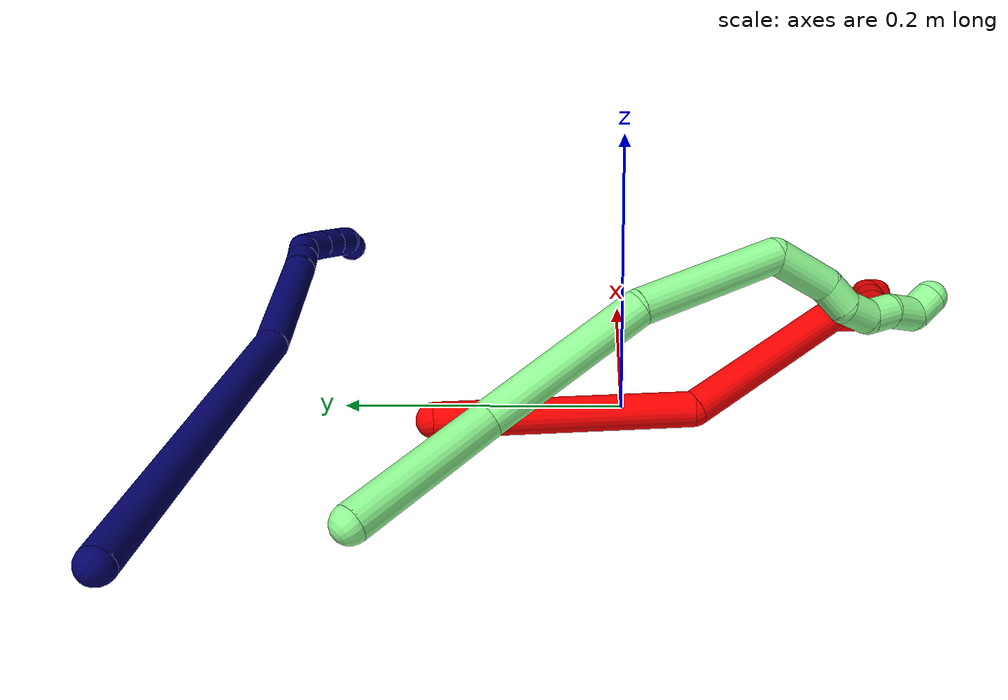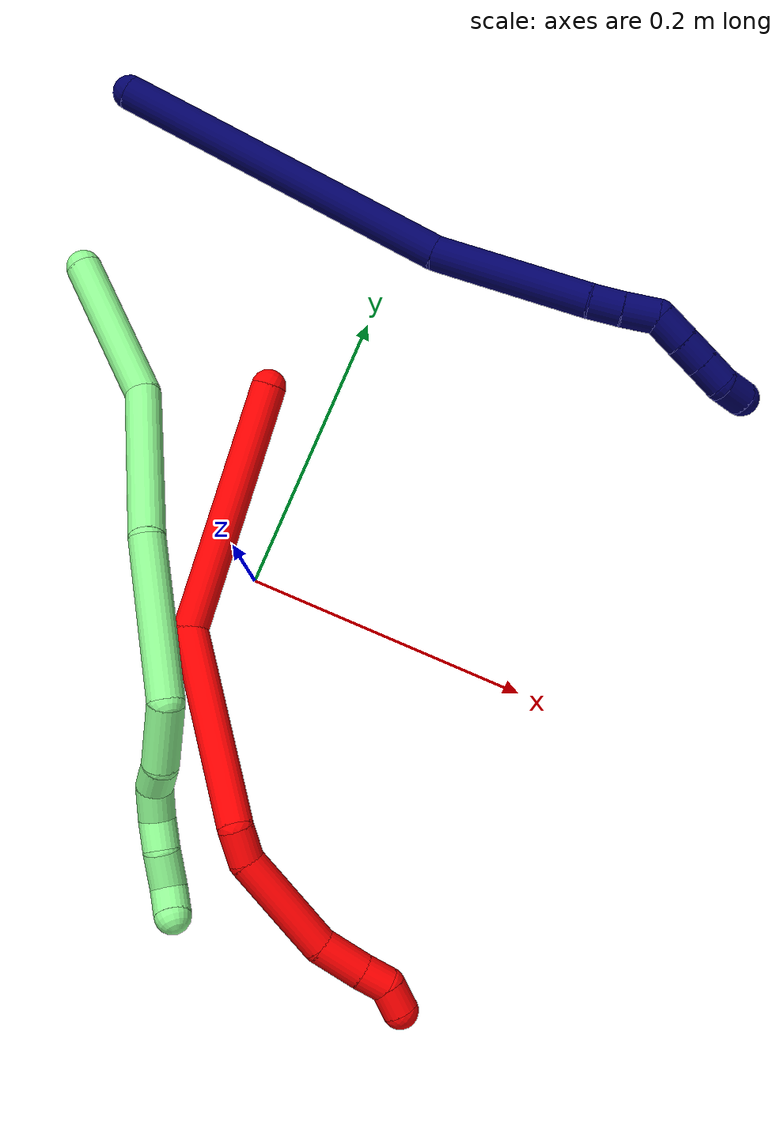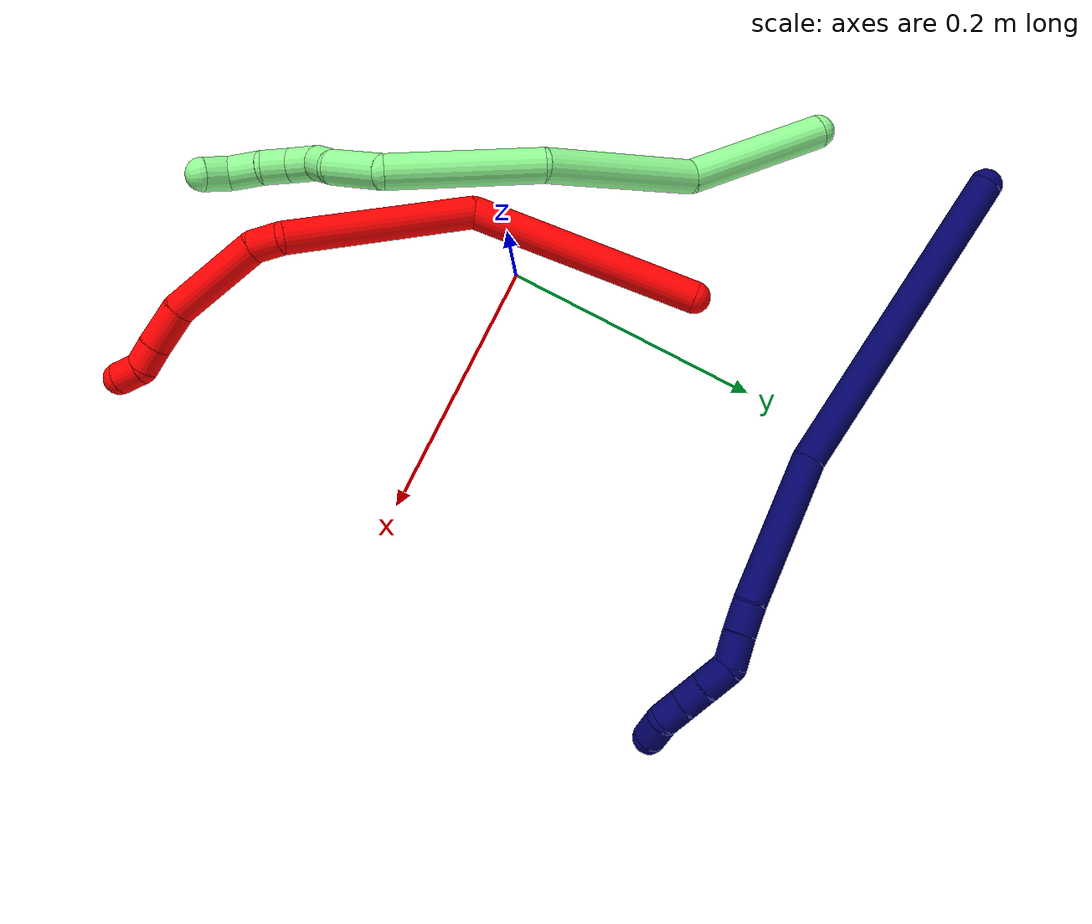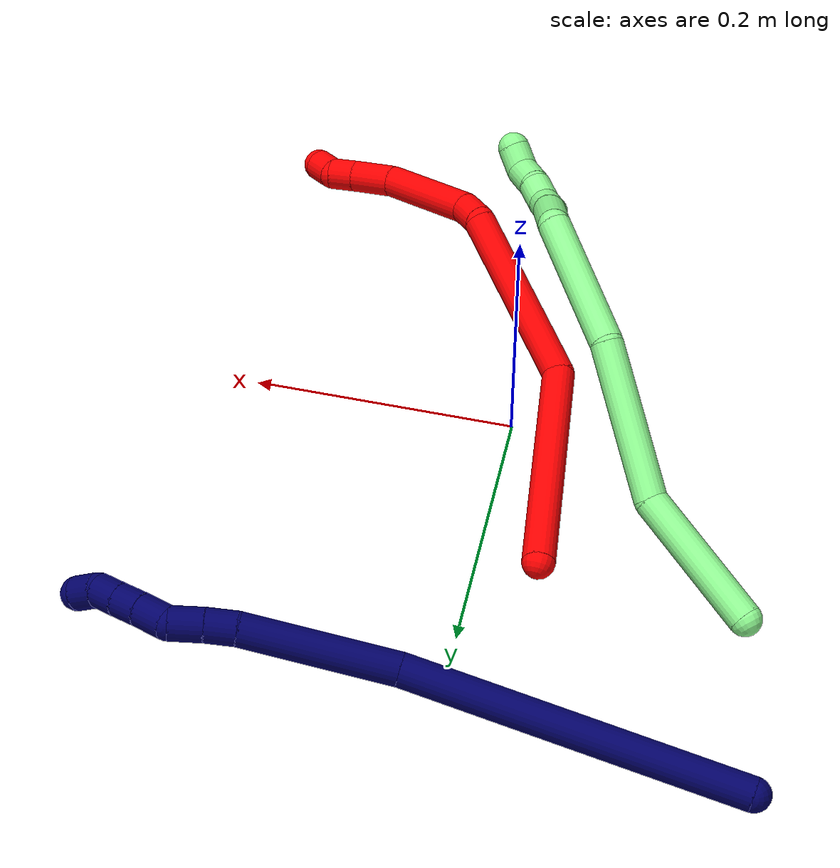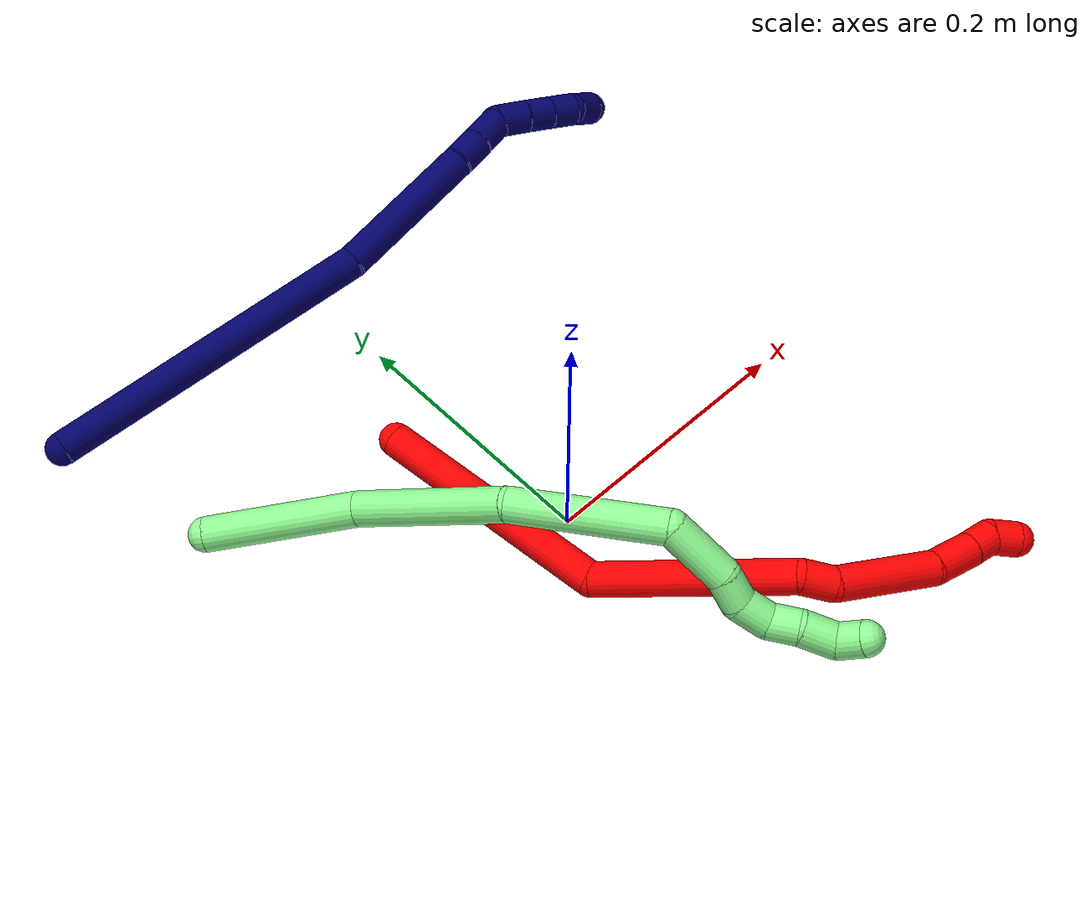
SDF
<sdf version="1.7">
 <world name="default">
  <model name="2">
   <static>0</static>
   <link name="2">
    <collision name="collision-cylinder-e_1_1_4">
     <pose>-0.002847 -0.031276 0.084442 0.35472 -0.031606 -0.005666</pose>
     <geometry><cylinder><radius>0.0125</radius><length>0.180187</length></cylinder></geometry>
     <surface>
      <friction><ode><mu>1.16</mu><mu2>1.16</mu2><slip1>0</slip1><slip2>0</slip2></ode></friction>
      <contact><ode><kp>1e+06</kp><kd>1</kd><max_vel>0</max_vel><min_depth>0.001</min_depth></ode></contact>
     </surface>
    </collision>
    <visual name="visual-cylinder-e_1_1_4">
     <pose>-0.002847 -0.031276 0.084442 0.35472 -0.031606 -0.005666</pose>
     <geometry><cylinder><radius>0.0125</radius><length>0.180187</length></cylinder></geometry>
     <material><ambient>1 0 0 1</ambient></material>
    </visual>
    <collision name="collision-cylinder-e_2_4_5">
     <pose>0.033742 -0.086785 0.22478 0.409065 0.574491 0.122405</pose>
     <geometry><cylinder><radius>0.0125</radius><length>0.145144</length></cylinder></geometry>
     <surface>
      <friction><ode><mu>1.16</mu><mu2>1.16</mu2><slip1>0</slip1><slip2>0</slip2></ode></friction>
      <contact><ode><kp>1e+06</kp><kd>1</kd><max_vel>0</max_vel><min_depth>0.001</min_depth></ode></contact>
     </surface>
    </collision>
    <visual name="visual-cylinder-e_2_4_5">
     <pose>0.033742 -0.086785 0.22478 0.409065 0.574491 0.122405</pose>
     <geometry><cylinder><radius>0.0125</radius><length>0.145144</length></cylinder></geometry>
     <material><ambient>1 0 0 1</ambient></material>
    </visual>
    <collision name="collision-cylinder-e_3_5_6">
     <pose>0.076863 -0.120195 0.287661 0.920283 0.30924 0.154194</pose>
     <geometry><cylinder><radius>0.0125</radius><length>0.024216</length></cylinder></geometry>
     <surface>
      <friction><ode><mu>1.16</mu><mu2>1.16</mu2><slip1>0</slip1><slip2>0</slip2></ode></friction>
      <contact><ode><kp>1e+06</kp><kd>1</kd><max_vel>0</max_vel><min_depth>0.001</min_depth></ode></contact>
     </surface>
    </collision>
    <visual name="visual-cylinder-e_3_5_6">
     <pose>0.076863 -0.120195 0.287661 0.920283 0.30924 0.154194</pose>
     <geometry><cylinder><radius>0.0125</radius><length>0.024216</length></cylinder></geometry>
     <material><ambient>1 0 0 1</ambient></material>
    </visual>
    <collision name="collision-cylinder-e_4_6_7">
     <pose>0.102477 -0.1587 0.305648 1.21189 0.610781 0.43012</pose>
     <geometry><cylinder><radius>0.0125</radius><length>0.076473</length></cylinder></geometry>
     <surface>
      <friction><ode><mu>1.16</mu><mu2>1.16</mu2><slip1>0</slip1><slip2>0</slip2></ode></friction>
      <contact><ode><kp>1e+06</kp><kd>1</kd><max_vel>0</max_vel><min_depth>0.001</min_depth></ode></contact>
     </surface>
    </collision>
    <visual name="visual-cylinder-e_4_6_7">
     <pose>0.102477 -0.1587 0.305648 1.21189 0.610781 0.43012</pose>
     <geometry><cylinder><radius>0.0125</radius><length>0.076473</length></cylinder></geometry>
     <material><ambient>1 0 0 1</ambient></material>
    </visual>
    <collision name="collision-cylinder-e_5_7_8">
     <pose>0.13611 -0.200004 0.317248 1.52089 0.773272 0.739023</pose>
     <geometry><cylinder><radius>0.0125</radius><length>0.033512</length></cylinder></geometry>
     <surface>
      <friction><ode><mu>1.16</mu><mu2>1.16</mu2><slip1>0</slip1><slip2>0</slip2></ode></friction>
      <contact><ode><kp>1e+06</kp><kd>1</kd><max_vel>0</max_vel><min_depth>0.001</min_depth></ode></contact>
     </surface>
    </collision>
    <visual name="visual-cylinder-e_5_7_8">
     <pose>0.13611 -0.200004 0.317248 1.52089 0.773272 0.739023</pose>
     <geometry><cylinder><radius>0.0125</radius><length>0.033512</length></cylinder></geometry>
     <material><ambient>1 0 0 1</ambient></material>
    </visual>
    <collision name="collision-cylinder-e_6_8_9">
     <pose>0.155246 -0.218919 0.317722 1.5887 0.819647 0.832816</pose>
     <geometry><cylinder><radius>0.0125</radius><length>0.020338</length></cylinder></geometry>
     <surface>
      <friction><ode><mu>1.16</mu><mu2>1.16</mu2><slip1>0</slip1><slip2>0</slip2></ode></friction>
      <contact><ode><kp>1e+06</kp><kd>1</kd><max_vel>0</max_vel><min_depth>0.001</min_depth></ode></contact>
     </surface>
    </collision>
    <visual name="visual-cylinder-e_6_8_9">
     <pose>0.155246 -0.218919 0.317722 1.5887 0.819647 0.832816</pose>
     <geometry><cylinder><radius>0.0125</radius><length>0.020338</length></cylinder></geometry>
     <material><ambient>1 0 0 1</ambient></material>
    </visual>
    <collision name="collision-cylinder-e_7_9_2">
     <pose>0.166841 -0.233716 0.322312 1.03048 0.426378 0.243947</pose>
     <geometry><cylinder><radius>0.0125</radius><length>0.02013</length></cylinder></geometry>
     <surface>
      <friction><ode><mu>1.16</mu><mu2>1.16</mu2><slip1>0</slip1><slip2>0</slip2></ode></friction>
      <contact><ode><kp>1e+06</kp><kd>1</kd><max_vel>0</max_vel><min_depth>0.001</min_depth></ode></contact>
     </surface>
    </collision>
    <visual name="visual-cylinder-e_7_9_2">
     <pose>0.166841 -0.233716 0.322312 1.03048 0.426378 0.243947</pose>
     <geometry><cylinder><radius>0.0125</radius><length>0.02013</length></cylinder></geometry>
     <material><ambient>1 0 0 1</ambient></material>
    </visual>
    <collision name="collision-sphere-2">
     <pose>0.171004 -0.241575 0.327026 0 -0 0</pose>
     <geometry><sphere><radius>0.0125</radius></sphere></geometry>
     <surface>
      <friction><ode><mu>1.16</mu><mu2>1.16</mu2><slip1>0</slip1><slip2>0</slip2></ode></friction>
      <contact><ode><kp>1e+06</kp><kd>1</kd><max_vel>0</max_vel><min_depth>0.001</min_depth></ode></contact>
     </surface>
    </collision>
    <visual name="visual-sphere-2">
     <pose>0.171004 -0.241575 0.327026 0 -0 0</pose>
     <geometry><sphere><radius>0.0125</radius></sphere></geometry>
     <material><ambient>1 0 0 1</ambient></material>
    </visual>
    <collision name="collision-sphere-9">
     <pose>0.162679 -0.225858 0.317598 0 -0 0</pose>
     <geometry><sphere><radius>0.0125</radius></sphere></geometry>
     <surface>
      <friction><ode><mu>1.16</mu><mu2>1.16</mu2><slip1>0</slip1><slip2>0</slip2></ode></friction>
      <contact><ode><kp>1e+06</kp><kd>1</kd><max_vel>0</max_vel><min_depth>0.001</min_depth></ode></contact>
     </surface>
    </collision>
    <visual name="visual-sphere-9">
     <pose>0.162679 -0.225858 0.317598 0 -0 0</pose>
     <geometry><sphere><radius>0.0125</radius></sphere></geometry>
     <material><ambient>1 0 0 1</ambient></material>
    </visual>
    <collision name="collision-sphere-4">
     <pose>-0.005694 -0.062553 0.168885 0 -0 0</pose>
     <geometry><sphere><radius>0.0125</radius></sphere></geometry>
     <surface>
      <friction><ode><mu>1.16</mu><mu2>1.16</mu2><slip1>0</slip1><slip2>0</slip2></ode></friction>
      <contact><ode><kp>1e+06</kp><kd>1</kd><max_vel>0</max_vel><min_depth>0.001</min_depth></ode></contact>
     </surface>
    </collision>
    <visual name="visual-sphere-4">
     <pose>-0.005694 -0.062553 0.168885 0 -0 0</pose>
     <geometry><sphere><radius>0.0125</radius></sphere></geometry>
     <material><ambient>1 0 0 1</ambient></material>
    </visual>
    <collision name="collision-sphere-1">
     <geometry><sphere><radius>0.0125</radius></sphere></geometry>
     <surface>
      <friction><ode><mu>1.16</mu><mu2>1.16</mu2><slip1>0</slip1><slip2>0</slip2></ode></friction>
      <contact><ode><kp>1e+06</kp><kd>1</kd><max_vel>0</max_vel><min_depth>0.001</min_depth></ode></contact>
     </surface>
    </collision>
    <visual name="visual-sphere-1">
     <geometry><sphere><radius>0.0125</radius></sphere></geometry>
     <material><ambient>1 0 0 1</ambient></material>
    </visual>
    <collision name="collision-sphere-8">
     <pose>0.147813 -0.21198 0.317846 0 -0 0</pose>
     <geometry><sphere><radius>0.0125</radius></sphere></geometry>
     <surface>
      <friction><ode><mu>1.16</mu><mu2>1.16</mu2><slip1>0</slip1><slip2>0</slip2></ode></friction>
      <contact><ode><kp>1e+06</kp><kd>1</kd><max_vel>0</max_vel><min_depth>0.001</min_depth></ode></contact>
     </surface>
    </collision>
    <visual name="visual-sphere-8">
     <pose>0.147813 -0.21198 0.317846 0 -0 0</pose>
     <geometry><sphere><radius>0.0125</radius></sphere></geometry>
     <material><ambient>1 0 0 1</ambient></material>
    </visual>
    <collision name="collision-sphere-5">
     <pose>0.073179 -0.111016 0.280676 0 -0 0</pose>
     <geometry><sphere><radius>0.0125</radius></sphere></geometry>
     <surface>
      <friction><ode><mu>1.16</mu><mu2>1.16</mu2><slip1>0</slip1><slip2>0</slip2></ode></friction>
      <contact><ode><kp>1e+06</kp><kd>1</kd><max_vel>0</max_vel><min_depth>0.001</min_depth></ode></contact>
     </surface>
    </collision>
    <visual name="visual-sphere-5">
     <pose>0.073179 -0.111016 0.280676 0 -0 0</pose>
     <geometry><sphere><radius>0.0125</radius></sphere></geometry>
     <material><ambient>1 0 0 1</ambient></material>
    </visual>
    <collision name="collision-sphere-6">
     <pose>0.080548 -0.129373 0.294645 0 -0 0</pose>
     <geometry><sphere><radius>0.0125</radius></sphere></geometry>
     <surface>
      <friction><ode><mu>1.16</mu><mu2>1.16</mu2><slip1>0</slip1><slip2>0</slip2></ode></friction>
      <contact><ode><kp>1e+06</kp><kd>1</kd><max_vel>0</max_vel><min_depth>0.001</min_depth></ode></contact>
     </surface>
    </collision>
    <visual name="visual-sphere-6">
     <pose>0.080548 -0.129373 0.294645 0 -0 0</pose>
     <geometry><sphere><radius>0.0125</radius></sphere></geometry>
     <material><ambient>1 0 0 1</ambient></material>
    </visual>
    <collision name="collision-sphere-7">
     <pose>0.124406 -0.188027 0.31665 0 -0 0</pose>
     <geometry><sphere><radius>0.0125</radius></sphere></geometry>
     <surface>
      <friction><ode><mu>1.16</mu><mu2>1.16</mu2><slip1>0</slip1><slip2>0</slip2></ode></friction>
      <contact><ode><kp>1e+06</kp><kd>1</kd><max_vel>0</max_vel><min_depth>0.001</min_depth></ode></contact>
     </surface>
    </collision>
    <visual name="visual-sphere-7">
     <pose>0.124406 -0.188027 0.31665 0 -0 0</pose>
     <geometry><sphere><radius>0.0125</radius></sphere></geometry>
     <material><ambient>1 0 0 1</ambient></material>
    </visual>
    <inertial>
     <pose>0.05032 -0.098277 0.203525 0 -0 0</pose>
     <mass>0.5</mass>
     <inertia>
      <ixx>0.000802</ixx>
      <ixy>0</ixy>
      <ixz>0</ixz>
      <iyy>0.000757</iyy>
      <iyz>0</iyz>
      <izz>0.000168</izz>
     </inertia>
    </inertial>
   </link>
   <pose>-0.045662 0.129153 0.011456 1.19397 -0.552429 0.145218</pose>
  </model>
  <model name="7">
   <static>0</static>
   <link name="7">
    <collision name="collision-cylinder-e_1_1_4">
     <pose>0.119814 -0.022493 0.034635 0.575981 1.23887 0.416331</pose>
     <geometry><cylinder><radius>0.0125</radius><length>0.253464</length></cylinder></geometry>
     <surface>
      <friction><ode><mu>1.16</mu><mu2>1.16</mu2><slip1>0</slip1><slip2>0</slip2></ode></friction>
      <contact><ode><kp>1e+06</kp><kd>1</kd><max_vel>0</max_vel><min_depth>0.001</min_depth></ode></contact>
     </surface>
    </collision>
    <visual name="visual-cylinder-e_1_1_4">
     <pose>0.119814 -0.022493 0.034635 0.575981 1.23887 0.416331</pose>
     <geometry><cylinder><radius>0.0125</radius><length>0.253464</length></cylinder></geometry>
     <material><ambient>0.003922 0 0.403922 1</ambient></material>
    </visual>
    <collision name="collision-cylinder-e_2_4_5">
     <pose>0.290478 -0.053069 0.094598 0.308889 1.08903 0.188004</pose>
     <geometry><cylinder><radius>0.0125</radius><length>0.11476</length></cylinder></geometry>
     <surface>
      <friction><ode><mu>1.16</mu><mu2>1.16</mu2><slip1>0</slip1><slip2>0</slip2></ode></friction>
      <contact><ode><kp>1e+06</kp><kd>1</kd><max_vel>0</max_vel><min_depth>0.001</min_depth></ode></contact>
     </surface>
    </collision>
    <visual name="visual-cylinder-e_2_4_5">
     <pose>0.290478 -0.053069 0.094598 0.308889 1.08903 0.188004</pose>
     <geometry><cylinder><radius>0.0125</radius><length>0.11476</length></cylinder></geometry>
     <material><ambient>0.003922 0 0.403922 1</ambient></material>
    </visual>
    <collision name="collision-cylinder-e_3_5_6">
     <pose>0.351591 -0.061215 0.12501 0.012518 1.11092 0.007769</pose>
     <geometry><cylinder><radius>0.0125</radius><length>0.022909</length></cylinder></geometry>
     <surface>
      <friction><ode><mu>1.16</mu><mu2>1.16</mu2><slip1>0</slip1><slip2>0</slip2></ode></friction>
      <contact><ode><kp>1e+06</kp><kd>1</kd><max_vel>0</max_vel><min_depth>0.001</min_depth></ode></contact>
     </surface>
    </collision>
    <visual name="visual-cylinder-e_3_5_6">
     <pose>0.351591 -0.061215 0.12501 0.012518 1.11092 0.007769</pose>
     <geometry><cylinder><radius>0.0125</radius><length>0.022909</length></cylinder></geometry>
     <material><ambient>0.003922 0 0.403922 1</ambient></material>
    </visual>
    <collision name="collision-cylinder-e_4_6_7">
     <pose>0.372948 -0.060568 0.135881 -0.122135 1.08684 -0.073839</pose>
     <geometry><cylinder><radius>0.0125</radius><length>0.025063</length></cylinder></geometry>
     <surface>
      <friction><ode><mu>1.16</mu><mu2>1.16</mu2><slip1>0</slip1><slip2>0</slip2></ode></friction>
      <contact><ode><kp>1e+06</kp><kd>1</kd><max_vel>0</max_vel><min_depth>0.001</min_depth></ode></contact>
     </surface>
    </collision>
    <visual name="visual-cylinder-e_4_6_7">
     <pose>0.372948 -0.060568 0.135881 -0.122135 1.08684 -0.073839</pose>
     <geometry><cylinder><radius>0.0125</radius><length>0.025063</length></cylinder></geometry>
     <material><ambient>0.003922 0 0.403922 1</ambient></material>
    </visual>
    <collision name="collision-cylinder-e_5_7_8">
     <pose>0.3957 -0.061508 0.140599 2.14578 1.40373 1.99882</pose>
     <geometry><cylinder><radius>0.0125</radius><length>0.023649</length></cylinder></geometry>
     <surface>
      <friction><ode><mu>1.16</mu><mu2>1.16</mu2><slip1>0</slip1><slip2>0</slip2></ode></friction>
      <contact><ode><kp>1e+06</kp><kd>1</kd><max_vel>0</max_vel><min_depth>0.001</min_depth></ode></contact>
     </surface>
    </collision>
    <visual name="visual-cylinder-e_5_7_8">
     <pose>0.3957 -0.061508 0.140599 2.14578 1.40373 1.99882</pose>
     <geometry><cylinder><radius>0.0125</radius><length>0.023649</length></cylinder></geometry>
     <material><ambient>0.003922 0 0.403922 1</ambient></material>
    </visual>
    <collision name="collision-cylinder-e_6_8_9">
     <pose>0.417336 -0.064115 0.138491 2.39708 1.43016 2.29649</pose>
     <geometry><cylinder><radius>0.0125</radius><length>0.020152</length></cylinder></geometry>
     <surface>
      <friction><ode><mu>1.16</mu><mu2>1.16</mu2><slip1>0</slip1><slip2>0</slip2></ode></friction>
      <contact><ode><kp>1e+06</kp><kd>1</kd><max_vel>0</max_vel><min_depth>0.001</min_depth></ode></contact>
     </surface>
    </collision>
    <visual name="visual-cylinder-e_6_8_9">
     <pose>0.417336 -0.064115 0.138491 2.39708 1.43016 2.29649</pose>
     <geometry><cylinder><radius>0.0125</radius><length>0.020152</length></cylinder></geometry>
     <material><ambient>0.003922 0 0.403922 1</ambient></material>
    </visual>
    <collision name="collision-cylinder-e_7_9_10">
     <pose>0.437197 -0.066139 0.136363 2.36638 1.41773 2.25294</pose>
     <geometry><cylinder><radius>0.0125</radius><length>0.020002</length></cylinder></geometry>
     <surface>
      <friction><ode><mu>1.16</mu><mu2>1.16</mu2><slip1>0</slip1><slip2>0</slip2></ode></friction>
      <contact><ode><kp>1e+06</kp><kd>1</kd><max_vel>0</max_vel><min_depth>0.001</min_depth></ode></contact>
     </surface>
    </collision>
    <visual name="visual-cylinder-e_7_9_10">
     <pose>0.437197 -0.066139 0.136363 2.36638 1.41773 2.25294</pose>
     <geometry><cylinder><radius>0.0125</radius><length>0.020002</length></cylinder></geometry>
     <material><ambient>0.003922 0 0.403922 1</ambient></material>
    </visual>
    <collision name="collision-cylinder-e_8_10_2">
     <pose>0.456357 -0.063578 0.134378 -1.81282 1.18783 -1.42308</pose>
     <geometry><cylinder><radius>0.0125</radius><length>0.020001</length></cylinder></geometry>
     <surface>
      <friction><ode><mu>1.16</mu><mu2>1.16</mu2><slip1>0</slip1><slip2>0</slip2></ode></friction>
      <contact><ode><kp>1e+06</kp><kd>1</kd><max_vel>0</max_vel><min_depth>0.001</min_depth></ode></contact>
     </surface>
    </collision>
    <visual name="visual-cylinder-e_8_10_2">
     <pose>0.456357 -0.063578 0.134378 -1.81282 1.18783 -1.42308</pose>
     <geometry><cylinder><radius>0.0125</radius><length>0.020001</length></cylinder></geometry>
     <material><ambient>0.003922 0 0.403922 1</ambient></material>
    </visual>
    <collision name="collision-sphere-2">
     <pose>0.465633 -0.05995 0.133482 0 -0 0</pose>
     <geometry><sphere><radius>0.0125</radius></sphere></geometry>
     <surface>
      <friction><ode><mu>1.16</mu><mu2>1.16</mu2><slip1>0</slip1><slip2>0</slip2></ode></friction>
      <contact><ode><kp>1e+06</kp><kd>1</kd><max_vel>0</max_vel><min_depth>0.001</min_depth></ode></contact>
     </surface>
    </collision>
    <visual name="visual-sphere-2">
     <pose>0.465633 -0.05995 0.133482 0 -0 0</pose>
     <geometry><sphere><radius>0.0125</radius></sphere></geometry>
     <material><ambient>0.003922 0 0.403922 1</ambient></material>
    </visual>
    <collision name="collision-sphere-10">
     <pose>0.447081 -0.067206 0.135274 0 -0 0</pose>
     <geometry><sphere><radius>0.0125</radius></sphere></geometry>
     <surface>
      <friction><ode><mu>1.16</mu><mu2>1.16</mu2><slip1>0</slip1><slip2>0</slip2></ode></friction>
      <contact><ode><kp>1e+06</kp><kd>1</kd><max_vel>0</max_vel><min_depth>0.001</min_depth></ode></contact>
     </surface>
    </collision>
    <visual name="visual-sphere-10">
     <pose>0.447081 -0.067206 0.135274 0 -0 0</pose>
     <geometry><sphere><radius>0.0125</radius></sphere></geometry>
     <material><ambient>0.003922 0 0.403922 1</ambient></material>
    </visual>
    <collision name="collision-sphere-9">
     <pose>0.427313 -0.065072 0.137452 0 -0 0</pose>
     <geometry><sphere><radius>0.0125</radius></sphere></geometry>
     <surface>
      <friction><ode><mu>1.16</mu><mu2>1.16</mu2><slip1>0</slip1><slip2>0</slip2></ode></friction>
      <contact><ode><kp>1e+06</kp><kd>1</kd><max_vel>0</max_vel><min_depth>0.001</min_depth></ode></contact>
     </surface>
    </collision>
    <visual name="visual-sphere-9">
     <pose>0.427313 -0.065072 0.137452 0 -0 0</pose>
     <geometry><sphere><radius>0.0125</radius></sphere></geometry>
     <material><ambient>0.003922 0 0.403922 1</ambient></material>
    </visual>
    <collision name="collision-sphere-4">
     <pose>0.239629 -0.044986 0.069269 0 -0 0</pose>
     <geometry><sphere><radius>0.0125</radius></sphere></geometry>
     <surface>
      <friction><ode><mu>1.16</mu><mu2>1.16</mu2><slip1>0</slip1><slip2>0</slip2></ode></friction>
      <contact><ode><kp>1e+06</kp><kd>1</kd><max_vel>0</max_vel><min_depth>0.001</min_depth></ode></contact>
     </surface>
    </collision>
    <visual name="visual-sphere-4">
     <pose>0.239629 -0.044986 0.069269 0 -0 0</pose>
     <geometry><sphere><radius>0.0125</radius></sphere></geometry>
     <material><ambient>0.003922 0 0.403922 1</ambient></material>
    </visual>
    <collision name="collision-sphere-1">
     <geometry><sphere><radius>0.0125</radius></sphere></geometry>
     <surface>
      <friction><ode><mu>1.16</mu><mu2>1.16</mu2><slip1>0</slip1><slip2>0</slip2></ode></friction>
      <contact><ode><kp>1e+06</kp><kd>1</kd><max_vel>0</max_vel><min_depth>0.001</min_depth></ode></contact>
     </surface>
    </collision>
    <visual name="visual-sphere-1">
     <geometry><sphere><radius>0.0125</radius></sphere></geometry>
     <material><ambient>0.003922 0 0.403922 1</ambient></material>
    </visual>
    <collision name="collision-sphere-8">
     <pose>0.40736 -0.063158 0.139529 0 -0 0</pose>
     <geometry><sphere><radius>0.0125</radius></sphere></geometry>
     <surface>
      <friction><ode><mu>1.16</mu><mu2>1.16</mu2><slip1>0</slip1><slip2>0</slip2></ode></friction>
      <contact><ode><kp>1e+06</kp><kd>1</kd><max_vel>0</max_vel><min_depth>0.001</min_depth></ode></contact>
     </surface>
    </collision>
    <visual name="visual-sphere-8">
     <pose>0.40736 -0.063158 0.139529 0 -0 0</pose>
     <geometry><sphere><radius>0.0125</radius></sphere></geometry>
     <material><ambient>0.003922 0 0.403922 1</ambient></material>
    </visual>
    <collision name="collision-sphere-5">
     <pose>0.341327 -0.061151 0.119926 0 -0 0</pose>
     <geometry><sphere><radius>0.0125</radius></sphere></geometry>
     <surface>
      <friction><ode><mu>1.16</mu><mu2>1.16</mu2><slip1>0</slip1><slip2>0</slip2></ode></friction>
      <contact><ode><kp>1e+06</kp><kd>1</kd><max_vel>0</max_vel><min_depth>0.001</min_depth></ode></contact>
     </surface>
    </collision>
    <visual name="visual-sphere-5">
     <pose>0.341327 -0.061151 0.119926 0 -0 0</pose>
     <geometry><sphere><radius>0.0125</radius></sphere></geometry>
     <material><ambient>0.003922 0 0.403922 1</ambient></material>
    </visual>
    <collision name="collision-sphere-6">
     <pose>0.361856 -0.061278 0.130094 0 -0 0</pose>
     <geometry><sphere><radius>0.0125</radius></sphere></geometry>
     <surface>
      <friction><ode><mu>1.16</mu><mu2>1.16</mu2><slip1>0</slip1><slip2>0</slip2></ode></friction>
      <contact><ode><kp>1e+06</kp><kd>1</kd><max_vel>0</max_vel><min_depth>0.001</min_depth></ode></contact>
     </surface>
    </collision>
    <visual name="visual-sphere-6">
     <pose>0.361856 -0.061278 0.130094 0 -0 0</pose>
     <geometry><sphere><radius>0.0125</radius></sphere></geometry>
     <material><ambient>0.003922 0 0.403922 1</ambient></material>
    </visual>
    <collision name="collision-sphere-7">
     <pose>0.384041 -0.059858 0.141668 0 -0 0</pose>
     <geometry><sphere><radius>0.0125</radius></sphere></geometry>
     <surface>
      <friction><ode><mu>1.16</mu><mu2>1.16</mu2><slip1>0</slip1><slip2>0</slip2></ode></friction>
      <contact><ode><kp>1e+06</kp><kd>1</kd><max_vel>0</max_vel><min_depth>0.001</min_depth></ode></contact>
     </surface>
    </collision>
    <visual name="visual-sphere-7">
     <pose>0.384041 -0.059858 0.141668 0 -0 0</pose>
     <geometry><sphere><radius>0.0125</radius></sphere></geometry>
     <material><ambient>0.003922 0 0.403922 1</ambient></material>
    </visual>
    <inertial>
     <pose>0.233492 -0.040106 0.07487 0 -0 0</pose>
     <mass>0.5</mass>
     <inertia>
      <ixx>0.000696</ixx>
      <ixy>0</ixy>
      <ixz>0</ixz>
      <iyy>0.001659</iyy>
      <iyz>0</iyz>
      <izz>-0.001146</izz>
     </inertia>
    </inertial>
   </link>
   <pose>-0.223673 0.287507 0.012502 -0.939998 0.214582 -0.233864</pose>
  </model>
  <model name="13">
   <static>0</static>
   <link name="13">
    <collision name="collision-cylinder-e_1_1_4">
     <pose>0.00987 0.006854 0.053294 -0.127909 0.181665 -0.011666</pose>
     <geometry><cylinder><radius>0.0125</radius><length>0.109265</length></cylinder></geometry>
     <surface>
      <friction><ode><mu>1.16</mu><mu2>1.16</mu2><slip1>0</slip1><slip2>0</slip2></ode></friction>
      <contact><ode><kp>1e+06</kp><kd>1</kd><max_vel>0</max_vel><min_depth>0.001</min_depth></ode></contact>
     </surface>
    </collision>
    <visual name="visual-cylinder-e_1_1_4">
     <pose>0.00987 0.006854 0.053294 -0.127909 0.181665 -0.011666</pose>
     <geometry><cylinder><radius>0.0125</radius><length>0.109265</length></cylinder></geometry>
     <material><ambient>0.564706 0.984314 0.572549 1</ambient></material>
    </visual>
    <collision name="collision-cylinder-e_2_4_5">
     <pose>0.019408 -0.00018 0.16498 0.233519 -0.005543 -0.00065</pose>
     <geometry><cylinder><radius>0.0125</radius><length>0.120042</length></cylinder></geometry>
     <surface>
      <friction><ode><mu>1.16</mu><mu2>1.16</mu2><slip1>0</slip1><slip2>0</slip2></ode></friction>
      <contact><ode><kp>1e+06</kp><kd>1</kd><max_vel>0</max_vel><min_depth>0.001</min_depth></ode></contact>
     </surface>
    </collision>
    <visual name="visual-cylinder-e_2_4_5">
     <pose>0.019408 -0.00018 0.16498 0.233519 -0.005543 -0.00065</pose>
     <geometry><cylinder><radius>0.0125</radius><length>0.120042</length></cylinder></geometry>
     <material><ambient>0.564706 0.984314 0.572549 1</ambient></material>
    </visual>
    <collision name="collision-cylinder-e_3_5_6">
     <pose>0.036041 -0.022653 0.275477 0.163277 0.310854 0.02564</pose>
     <geometry><cylinder><radius>0.0125</radius><length>0.110935</length></cylinder></geometry>
     <surface>
      <friction><ode><mu>1.16</mu><mu2>1.16</mu2><slip1>0</slip1><slip2>0</slip2></ode></friction>
      <contact><ode><kp>1e+06</kp><kd>1</kd><max_vel>0</max_vel><min_depth>0.001</min_depth></ode></contact>
     </surface>
    </collision>
    <visual name="visual-cylinder-e_3_5_6">
     <pose>0.036041 -0.022653 0.275477 0.163277 0.310854 0.02564</pose>
     <geometry><cylinder><radius>0.0125</radius><length>0.110935</length></cylinder></geometry>
     <material><ambient>0.564706 0.984314 0.572549 1</ambient></material>
    </visual>
    <collision name="collision-cylinder-e_4_6_7">
     <pose>0.07313 -0.037242 0.338105 0.518589 1.02891 0.297651</pose>
     <geometry><cylinder><radius>0.0125</radius><length>0.046975</length></cylinder></geometry>
     <surface>
      <friction><ode><mu>1.16</mu><mu2>1.16</mu2><slip1>0</slip1><slip2>0</slip2></ode></friction>
      <contact><ode><kp>1e+06</kp><kd>1</kd><max_vel>0</max_vel><min_depth>0.001</min_depth></ode></contact>
     </surface>
    </collision>
    <visual name="visual-cylinder-e_4_6_7">
     <pose>0.07313 -0.037242 0.338105 0.518589 1.02891 0.297651</pose>
     <geometry><cylinder><radius>0.0125</radius><length>0.046975</length></cylinder></geometry>
     <material><ambient>0.564706 0.984314 0.572549 1</ambient></material>
    </visual>
    <collision name="collision-cylinder-e_5_7_8">
     <pose>0.103525 -0.046299 0.350142 1.10994 1.25039 0.841513</pose>
     <geometry><cylinder><radius>0.0125</radius><length>0.021647</length></cylinder></geometry>
     <surface>
      <friction><ode><mu>1.16</mu><mu2>1.16</mu2><slip1>0</slip1><slip2>0</slip2></ode></friction>
      <contact><ode><kp>1e+06</kp><kd>1</kd><max_vel>0</max_vel><min_depth>0.001</min_depth></ode></contact>
     </surface>
    </collision>
    <visual name="visual-cylinder-e_5_7_8">
     <pose>0.103525 -0.046299 0.350142 1.10994 1.25039 0.841513</pose>
     <geometry><cylinder><radius>0.0125</radius><length>0.021647</length></cylinder></geometry>
     <material><ambient>0.564706 0.984314 0.572549 1</ambient></material>
    </visual>
    <collision name="collision-cylinder-e_6_8_9">
     <pose>0.123438 -0.050879 0.358348 0.224437 0.952189 0.11609</pose>
     <geometry><cylinder><radius>0.0125</radius><length>0.023668</length></cylinder></geometry>
     <surface>
      <friction><ode><mu>1.16</mu><mu2>1.16</mu2><slip1>0</slip1><slip2>0</slip2></ode></friction>
      <contact><ode><kp>1e+06</kp><kd>1</kd><max_vel>0</max_vel><min_depth>0.001</min_depth></ode></contact>
     </surface>
    </collision>
    <visual name="visual-cylinder-e_6_8_9">
     <pose>0.123438 -0.050879 0.358348 0.224437 0.952189 0.11609</pose>
     <geometry><cylinder><radius>0.0125</radius><length>0.023668</length></cylinder></geometry>
     <material><ambient>0.564706 0.984314 0.572549 1</ambient></material>
    </visual>
    <collision name="collision-cylinder-e_7_9_10">
     <pose>0.137549 -0.053693 0.37453 0.134669 0.436661 0.029922</pose>
     <geometry><cylinder><radius>0.0125</radius><length>0.02114</length></cylinder></geometry>
     <surface>
      <friction><ode><mu>1.16</mu><mu2>1.16</mu2><slip1>0</slip1><slip2>0</slip2></ode></friction>
      <contact><ode><kp>1e+06</kp><kd>1</kd><max_vel>0</max_vel><min_depth>0.001</min_depth></ode></contact>
     </surface>
    </collision>
    <visual name="visual-cylinder-e_7_9_10">
     <pose>0.137549 -0.053693 0.37453 0.134669 0.436661 0.029922</pose>
     <geometry><cylinder><radius>0.0125</radius><length>0.02114</length></cylinder></geometry>
     <material><ambient>0.564706 0.984314 0.572549 1</ambient></material>
    </visual>
    <collision name="collision-cylinder-e_8_10_11">
     <pose>0.150942 -0.055654 0.393626 0.070187 0.747369 0.02753</pose>
     <geometry><cylinder><radius>0.0125</radius><length>0.026253</length></cylinder></geometry>
     <surface>
      <friction><ode><mu>1.16</mu><mu2>1.16</mu2><slip1>0</slip1><slip2>0</slip2></ode></friction>
      <contact><ode><kp>1e+06</kp><kd>1</kd><max_vel>0</max_vel><min_depth>0.001</min_depth></ode></contact>
     </surface>
    </collision>
    <visual name="visual-cylinder-e_8_10_11">
     <pose>0.150942 -0.055654 0.393626 0.070187 0.747369 0.02753</pose>
     <geometry><cylinder><radius>0.0125</radius><length>0.026253</length></cylinder></geometry>
     <material><ambient>0.564706 0.984314 0.572549 1</ambient></material>
    </visual>
    <collision name="collision-cylinder-e_9_11_2">
     <pose>0.159623 -0.057656 0.413178 0.132557 -0.024058 -0.001597</pose>
     <geometry><cylinder><radius>0.0125</radius><length>0.020076</length></cylinder></geometry>
     <surface>
      <friction><ode><mu>1.16</mu><mu2>1.16</mu2><slip1>0</slip1><slip2>0</slip2></ode></friction>
      <contact><ode><kp>1e+06</kp><kd>1</kd><max_vel>0</max_vel><min_depth>0.001</min_depth></ode></contact>
     </surface>
    </collision>
    <visual name="visual-cylinder-e_9_11_2">
     <pose>0.159623 -0.057656 0.413178 0.132557 -0.024058 -0.001597</pose>
     <geometry><cylinder><radius>0.0125</radius><length>0.020076</length></cylinder></geometry>
     <material><ambient>0.564706 0.984314 0.572549 1</ambient></material>
    </visual>
    <collision name="collision-sphere-2">
     <pose>0.159381 -0.058982 0.423125 0 -0 0</pose>
     <geometry><sphere><radius>0.0125</radius></sphere></geometry>
     <surface>
      <friction><ode><mu>1.16</mu><mu2>1.16</mu2><slip1>0</slip1><slip2>0</slip2></ode></friction>
      <contact><ode><kp>1e+06</kp><kd>1</kd><max_vel>0</max_vel><min_depth>0.001</min_depth></ode></contact>
     </surface>
    </collision>
    <visual name="visual-sphere-2">
     <pose>0.159381 -0.058982 0.423125 0 -0 0</pose>
     <geometry><sphere><radius>0.0125</radius></sphere></geometry>
     <material><ambient>0.564706 0.984314 0.572549 1</ambient></material>
    </visual>
    <collision name="collision-sphere-11">
     <pose>0.159864 -0.056329 0.403231 0 -0 0</pose>
     <geometry><sphere><radius>0.0125</radius></sphere></geometry>
     <surface>
      <friction><ode><mu>1.16</mu><mu2>1.16</mu2><slip1>0</slip1><slip2>0</slip2></ode></friction>
      <contact><ode><kp>1e+06</kp><kd>1</kd><max_vel>0</max_vel><min_depth>0.001</min_depth></ode></contact>
     </surface>
    </collision>
    <visual name="visual-sphere-11">
     <pose>0.159864 -0.056329 0.403231 0 -0 0</pose>
     <geometry><sphere><radius>0.0125</radius></sphere></geometry>
     <material><ambient>0.564706 0.984314 0.572549 1</ambient></material>
    </visual>
    <collision name="collision-sphere-10">
     <pose>0.14202 -0.054979 0.384022 0 -0 0</pose>
     <geometry><sphere><radius>0.0125</radius></sphere></geometry>
     <surface>
      <friction><ode><mu>1.16</mu><mu2>1.16</mu2><slip1>0</slip1><slip2>0</slip2></ode></friction>
      <contact><ode><kp>1e+06</kp><kd>1</kd><max_vel>0</max_vel><min_depth>0.001</min_depth></ode></contact>
     </surface>
    </collision>
    <visual name="visual-sphere-10">
     <pose>0.14202 -0.054979 0.384022 0 -0 0</pose>
     <geometry><sphere><radius>0.0125</radius></sphere></geometry>
     <material><ambient>0.564706 0.984314 0.572549 1</ambient></material>
    </visual>
    <collision name="collision-sphere-9">
     <pose>0.133079 -0.052407 0.365039 0 -0 0</pose>
     <geometry><sphere><radius>0.0125</radius></sphere></geometry>
     <surface>
      <friction><ode><mu>1.16</mu><mu2>1.16</mu2><slip1>0</slip1><slip2>0</slip2></ode></friction>
      <contact><ode><kp>1e+06</kp><kd>1</kd><max_vel>0</max_vel><min_depth>0.001</min_depth></ode></contact>
     </surface>
    </collision>
    <visual name="visual-sphere-9">
     <pose>0.133079 -0.052407 0.365039 0 -0 0</pose>
     <geometry><sphere><radius>0.0125</radius></sphere></geometry>
     <material><ambient>0.564706 0.984314 0.572549 1</ambient></material>
    </visual>
    <collision name="collision-sphere-4">
     <pose>0.019741 0.013709 0.106589 0 -0 0</pose>
     <geometry><sphere><radius>0.0125</radius></sphere></geometry>
     <surface>
      <friction><ode><mu>1.16</mu><mu2>1.16</mu2><slip1>0</slip1><slip2>0</slip2></ode></friction>
      <contact><ode><kp>1e+06</kp><kd>1</kd><max_vel>0</max_vel><min_depth>0.001</min_depth></ode></contact>
     </surface>
    </collision>
    <visual name="visual-sphere-4">
     <pose>0.019741 0.013709 0.106589 0 -0 0</pose>
     <geometry><sphere><radius>0.0125</radius></sphere></geometry>
     <material><ambient>0.564706 0.984314 0.572549 1</ambient></material>
    </visual>
    <collision name="collision-sphere-1">
     <geometry><sphere><radius>0.0125</radius></sphere></geometry>
     <surface>
      <friction><ode><mu>1.16</mu><mu2>1.16</mu2><slip1>0</slip1><slip2>0</slip2></ode></friction>
      <contact><ode><kp>1e+06</kp><kd>1</kd><max_vel>0</max_vel><min_depth>0.001</min_depth></ode></contact>
     </surface>
    </collision>
    <visual name="visual-sphere-1">
     <geometry><sphere><radius>0.0125</radius></sphere></geometry>
     <material><ambient>0.564706 0.984314 0.572549 1</ambient></material>
    </visual>
    <collision name="collision-sphere-8">
     <pose>0.113797 -0.049352 0.351658 0 -0 0</pose>
     <geometry><sphere><radius>0.0125</radius></sphere></geometry>
     <surface>
      <friction><ode><mu>1.16</mu><mu2>1.16</mu2><slip1>0</slip1><slip2>0</slip2></ode></friction>
      <contact><ode><kp>1e+06</kp><kd>1</kd><max_vel>0</max_vel><min_depth>0.001</min_depth></ode></contact>
     </surface>
    </collision>
    <visual name="visual-sphere-8">
     <pose>0.113797 -0.049352 0.351658 0 -0 0</pose>
     <geometry><sphere><radius>0.0125</radius></sphere></geometry>
     <material><ambient>0.564706 0.984314 0.572549 1</ambient></material>
    </visual>
    <collision name="collision-sphere-5">
     <pose>0.019075 -0.014069 0.223371 0 -0 0</pose>
     <geometry><sphere><radius>0.0125</radius></sphere></geometry>
     <surface>
      <friction><ode><mu>1.16</mu><mu2>1.16</mu2><slip1>0</slip1><slip2>0</slip2></ode></friction>
      <contact><ode><kp>1e+06</kp><kd>1</kd><max_vel>0</max_vel><min_depth>0.001</min_depth></ode></contact>
     </surface>
    </collision>
    <visual name="visual-sphere-5">
     <pose>0.019075 -0.014069 0.223371 0 -0 0</pose>
     <geometry><sphere><radius>0.0125</radius></sphere></geometry>
     <material><ambient>0.564706 0.984314 0.572549 1</ambient></material>
    </visual>
    <collision name="collision-sphere-6">
     <pose>0.053007 -0.031237 0.327584 0 -0 0</pose>
     <geometry><sphere><radius>0.0125</radius></sphere></geometry>
     <surface>
      <friction><ode><mu>1.16</mu><mu2>1.16</mu2><slip1>0</slip1><slip2>0</slip2></ode></friction>
      <contact><ode><kp>1e+06</kp><kd>1</kd><max_vel>0</max_vel><min_depth>0.001</min_depth></ode></contact>
     </surface>
    </collision>
    <visual name="visual-sphere-6">
     <pose>0.053007 -0.031237 0.327584 0 -0 0</pose>
     <geometry><sphere><radius>0.0125</radius></sphere></geometry>
     <material><ambient>0.564706 0.984314 0.572549 1</ambient></material>
    </visual>
    <collision name="collision-sphere-7">
     <pose>0.093252 -0.043246 0.348626 0 -0 0</pose>
     <geometry><sphere><radius>0.0125</radius></sphere></geometry>
     <surface>
      <friction><ode><mu>1.16</mu><mu2>1.16</mu2><slip1>0</slip1><slip2>0</slip2></ode></friction>
      <contact><ode><kp>1e+06</kp><kd>1</kd><max_vel>0</max_vel><min_depth>0.001</min_depth></ode></contact>
     </surface>
    </collision>
    <visual name="visual-sphere-7">
     <pose>0.093252 -0.043246 0.348626 0 -0 0</pose>
     <geometry><sphere><radius>0.0125</radius></sphere></geometry>
     <material><ambient>0.564706 0.984314 0.572549 1</ambient></material>
    </visual>
    <inertial>
     <pose>0.052159 -0.01899 0.229355 0 -0 0</pose>
     <mass>0.5</mass>
     <inertia><ixx>0.0004</ixx><ixy>0</ixy><ixz>0</ixz><iyy>0.000392</iyy><iyz>0</iyz><izz>5e-06</izz></inertia>
    </inertial>
   </link>
   <pose>-0.1981 0.154348 0.023308 -0.387295 1.10017 -1.23629</pose>
  </model>
 </world>
</sdf>
